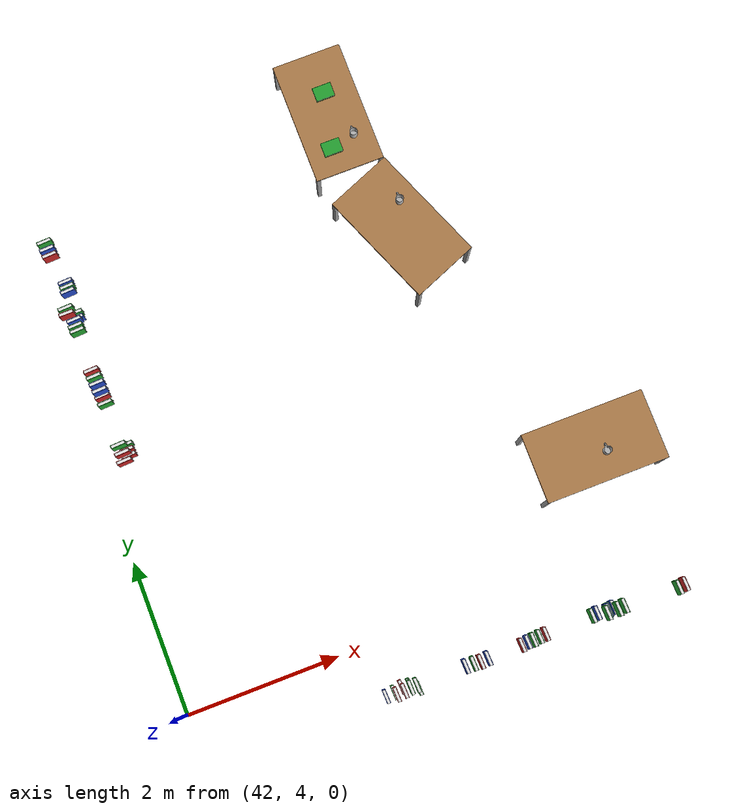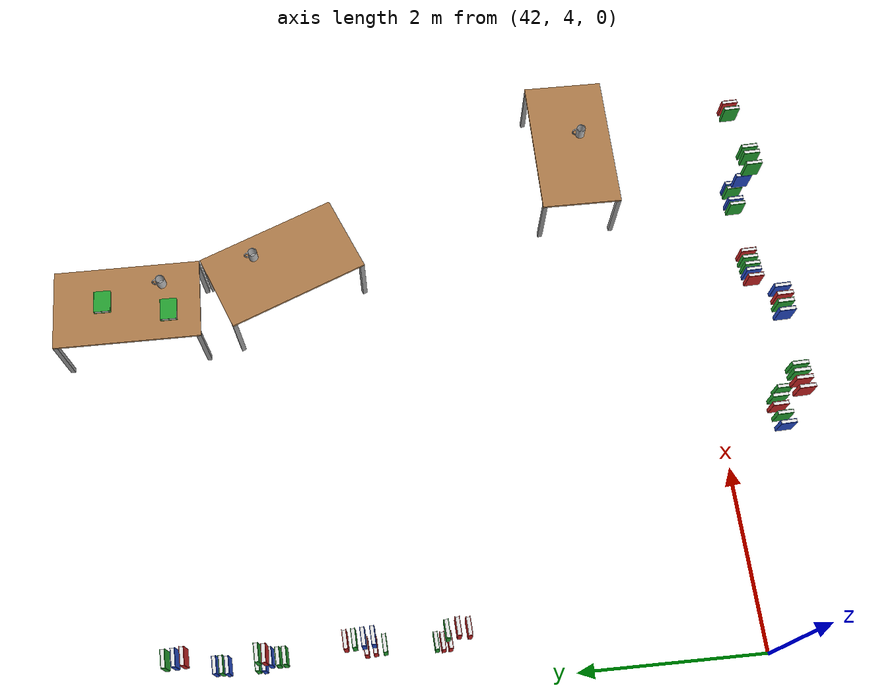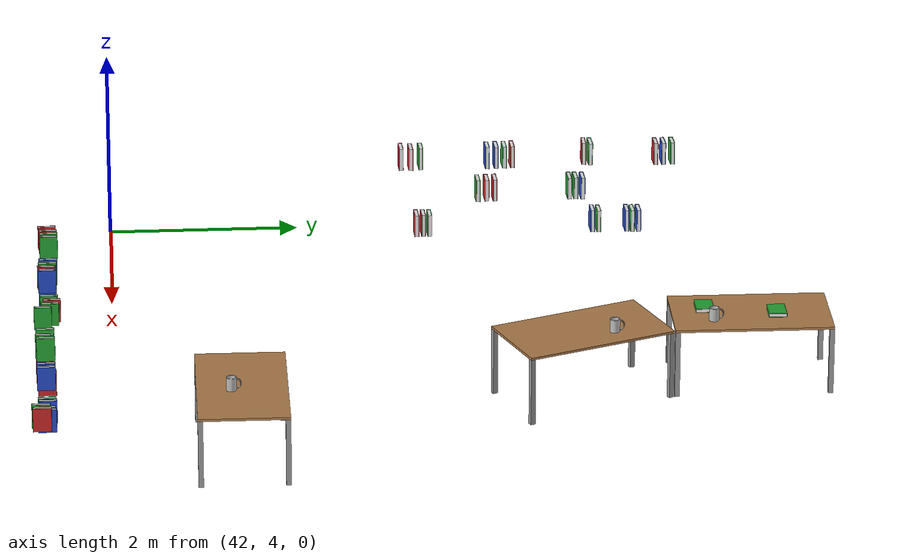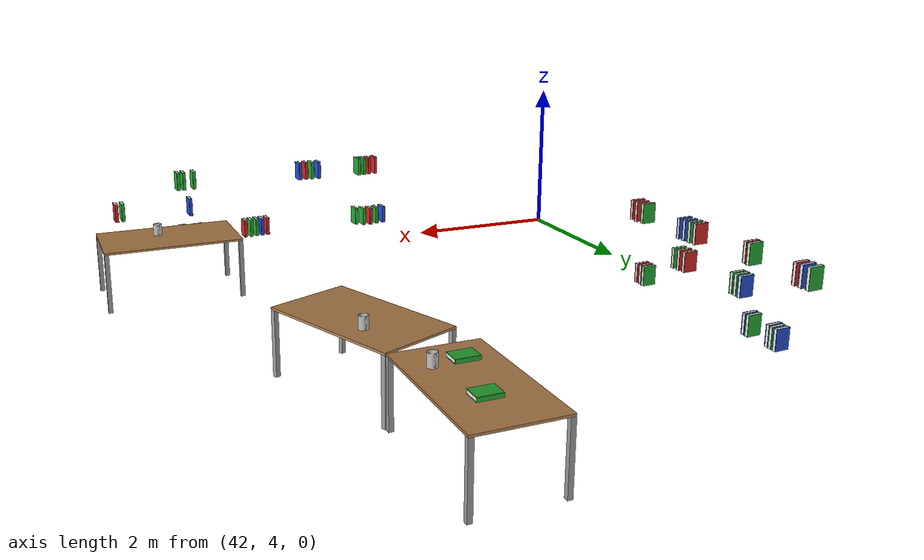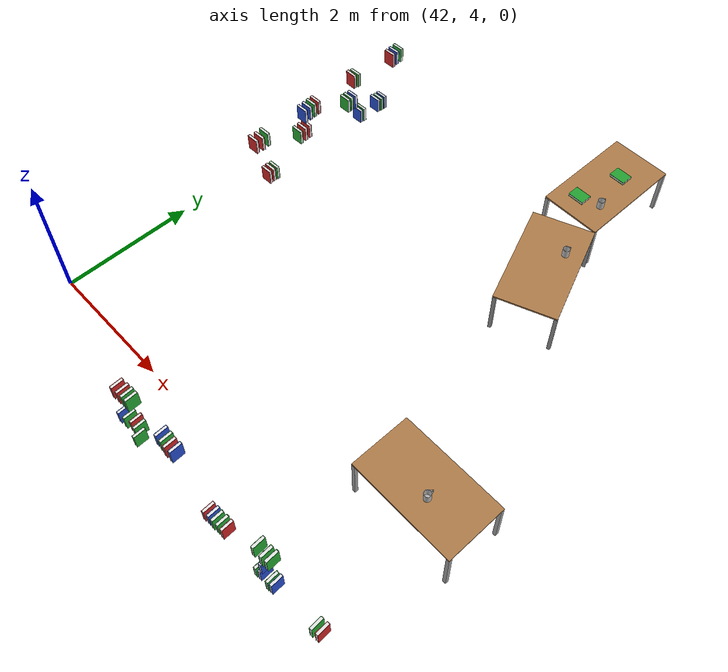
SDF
<sdf version="1.4">
 <world name="default">
  <include><uri>model://sun</uri></include>
  <model name="largeTable_r1403_atwindow">
   <pose>46.3 10.42 0 0 0 0</pose>
   <include><uri>model://largeTable</uri></include>
  </model>
  <model name="largeTable_r1403_diagonal">
   <pose>46.64 8.7 0 0 0 0.385778</pose>
   <include><uri>model://largeTable</uri></include>
  </model>
  <model name="largeTable_r1403_atwall">
   <pose>47.85 5.257 0 0 0 1.570796327</pose>
   <include><uri>model://largeTable</uri></include>
  </model>
  <model name="cup_19"><pose>46.50 10.07 0.78 0 0 0</pose><include><uri>model://cup</uri></include></model>
  <model name="cup_20"><pose>46.73 9.05 0.78 0 0 0</pose><include><uri>model://cup</uri></include></model>
  <model name="cup_21"><pose>47.96 5.19 0.78 0 0 0</pose><include><uri>model://cup</uri></include></model>
  <model name="greenBook_4">
   <pose>46.34 10.68 0.74 1.570796327 0 -1.570796327</pose>
   <include><uri>model://greenBook</uri></include>
  </model>
  <model name="greenBook_5">
   <pose>46.18 9.96 0.74 1.570796327 0 -1.570796327</pose>
   <include><uri>model://greenBook</uri></include>
  </model>
  <model name="redBook_7">
   <pose>48.2476 3.30816 0.582587 0 0 -1.53468</pose>
   <include><uri>model://redBook</uri></include>
  </model>
  <model name="greenBook_10">
   <pose>48.1617 3.29838 0.582587 0 0 -1.53468</pose>
   <include><uri>model://greenBook</uri></include>
  </model>
  <model name="blueBook_9">
   <pose>47.2512 3.34391 0.582587 0 0 -1.53468</pose>
   <include><uri>model://blueBook</uri></include>
  </model>
  <model name="blueBook_10">
   <pose>47.1746 3.35109 0.186407 0 0 -1.53468</pose>
   <include><uri>model://blueBook</uri></include>
  </model>
  <model name="greenBook_11">
   <pose>47.107 3.34176 0.186407 0 0 -1.53468</pose>
   <include><uri>model://greenBook</uri></include>
  </model>
  <model name="greenBook_12">
   <pose>47.324 3.33659 0.186407 0 0 -1.53468</pose>
   <include><uri>model://greenBook</uri></include>
  </model>
  <model name="blueBook_11">
   <pose>47.3842 3.34585 0.186407 0 0 -1.53468</pose>
   <include><uri>model://blueBook</uri></include>
  </model>
  <model name="redBook_8">
   <pose>46.4846 3.34086 0.186407 0 0 -1.53468</pose>
   <include><uri>model://redBook</uri></include>
  </model>
  <model name="greenBook_13">
   <pose>46.4012 3.33964 0.186407 0 0 -1.53468</pose>
   <include><uri>model://greenBook</uri></include>
  </model>
  <model name="greenBook_14">
   <pose>46.3167 3.33004 0.186407 0 0 -1.53468</pose>
   <include><uri>model://greenBook</uri></include>
  </model>
  <model name="blueBook_12">
   <pose>46.2406 3.32896 0.186407 0 0 -1.53468</pose>
   <include><uri>model://blueBook</uri></include>
  </model>
  <model name="greenBook_15">
   <pose>44.7863 3.28678 0.186407 0 0 -1.53468</pose>
   <include><uri>model://greenBook</uri></include>
  </model>
  <model name="greenBook_16">
   <pose>44.689 3.35967 0.186407 0 0 -1.53468</pose>
   <include><uri>model://greenBook</uri></include>
  </model>
  <model name="redBook_9">
   <pose>44.5896 3.37783 0.186407 0 0 -1.53468</pose>
   <include><uri>model://redBook</uri></include>
  </model>
  <model name="greenBook_17">
   <pose>44.4841 3.34874 0.186407 0 0 -1.53468</pose>
   <include><uri>model://greenBook</uri></include>
  </model>
  <model name="blueBook_13">
   <pose>44.3726 3.33787 0.186407 0 0 -1.53468</pose>
   <include><uri>model://blueBook</uri></include>
  </model>
  <model name="redBook_10">
   <pose>46.1594 3.32 0.186407 0 0 -1.53468</pose>
   <include><uri>model://redBook</uri></include>
  </model>
  <model name="greenBook_18">
   <pose>47.1818 3.33995 0.958151 0 0 -1.53468</pose>
   <include><uri>model://greenBook</uri></include>
  </model>
  <model name="greenBook_19">
   <pose>47.3215 3.33737 0.958151 0 0 -1.53468</pose>
   <include><uri>model://greenBook</uri></include>
  </model>
  <model name="greenBook_20">
   <pose>47.4001 3.34779 0.958151 0 0 -1.53468</pose>
   <include><uri>model://greenBook</uri></include>
  </model>
  <model name="blueBook_14">
   <pose>45.6584 3.35437 0.958151 0 0 -1.53468</pose>
   <include><uri>model://blueBook</uri></include>
  </model>
  <model name="redBook_11">
   <pose>45.564 3.34692 0.958151 0 0 -1.53468</pose>
   <include><uri>model://redBook</uri></include>
  </model>
  <model name="greenBook_21">
   <pose>45.4764 3.35777 0.958151 0 0 -1.53468</pose>
   <include><uri>model://greenBook</uri></include>
  </model>
  <model name="blueBook_15">
   <pose>45.3773 3.3623 0.958151 0 0 -1.53468</pose>
   <include><uri>model://blueBook</uri></include>
  </model>
  <model name="greenBook_22">
   <pose>44.7589 3.36577 0.958151 0 0 -1.53468</pose>
   <include><uri>model://greenBook</uri></include>
  </model>
  <model name="greenBook_23">
   <pose>44.6812 3.36465 0.958151 0 0 -1.53468</pose>
   <include><uri>model://greenBook</uri></include>
  </model>
  <model name="redBook_12">
   <pose>44.5983 3.35549 0.958151 0 0 -1.53468</pose>
   <include><uri>model://redBook</uri></include>
  </model>
  <model name="redBook_13">
   <pose>44.4985 3.34604 0.958151 0 0 -1.53468</pose>
   <include><uri>model://redBook</uri></include>
  </model>
  <model name="redBook_14">
   <pose>42.37 9.06 0.958151 0 0 0</pose>
   <include><uri>model://redBook</uri></include>
  </model>
  <model name="greenBook_24">
   <pose>42.4109 10.0044 0.958151 0 -0 0.045059</pose>
   <include><uri>model://greenBook</uri></include>
  </model>
  <model name="blueBook_16">
   <pose>42.4142 9.9093 0.958151 0 -0 0.045059</pose>
   <include><uri>model://blueBook</uri></include>
  </model>
  <model name="redBook_15">
   <pose>42.4186 9.8255 0.958151 0 -0 0.045059</pose>
   <include><uri>model://redBook</uri></include>
  </model>
  <model name="redBook_16">
   <pose>42.4187 8.28849 0.958151 0 -0 0.045059</pose>
   <include><uri>model://redBook</uri></include>
  </model>
  <model name="greenBook_25">
   <pose>42.4239 8.20397 0.958151 0 -0 0.045059</pose>
   <include><uri>model://greenBook</uri></include>
  </model>
  <model name="blueBook_17">
   <pose>42.4289 8.11599 0.958151 0 -0 0.045059</pose>
   <include><uri>model://blueBook</uri></include>
  </model>
  <model name="blueBook_18">
   <pose>42.4331 8.02142 0.958151 0 -0 0.045059</pose>
   <include><uri>model://blueBook</uri></include>
  </model>
  <model name="greenBook_26">
   <pose>42.4225 7.3117 0.958151 0 -0 0.045059</pose>
   <include><uri>model://greenBook</uri></include>
  </model>
  <model name="redBook_17">
   <pose>42.4353 7.2041 0.958151 0 -0 0.045059</pose>
   <include><uri>model://redBook</uri></include>
  </model>
  <model name="redBook_18">
   <pose>42.4249 7.10147 0.958151 0 -0 0.045059</pose>
   <include><uri>model://redBook</uri></include>
  </model>
  <model name="greenBook_27">
   <pose>42.3823 9.1288 0.958151 0 -0 0.045059</pose>
   <include><uri>model://greenBook</uri></include>
  </model>
  <model name="blueBook_19">
   <pose>42.3925 9.04987 0.571409 0 -0 0.045059</pose>
   <include><uri>model://blueBook</uri></include>
  </model>
  <model name="greenBook_28">
   <pose>42.3844 8.97391 0.571409 0 -0 0.045059</pose>
   <include><uri>model://greenBook</uri></include>
  </model>
  <model name="greenBook_29">
   <pose>42.384 8.90863 0.571409 0 -0 0.045059</pose>
   <include><uri>model://greenBook</uri></include>
  </model>
  <model name="redBook_19">
   <pose>42.3936 8.10754 0.571409 0 -0 0.045059</pose>
   <include><uri>model://redBook</uri></include>
  </model>
  <model name="redBook_20">
   <pose>42.3994 8.02036 0.571409 0 -0 0.045059</pose>
   <include><uri>model://redBook</uri></include>
  </model>
  <model name="greenBook_30">
   <pose>42.4036 7.92483 0.571409 0 -0 0.045059</pose>
   <include><uri>model://greenBook</uri></include>
  </model>
  <model name="greenBook_31">
   <pose>42.3995 9.2254 0.191656 0 -0 0.045059</pose>
   <include><uri>model://greenBook</uri></include>
  </model>
  <model name="blueBook_20">
   <pose>42.3925 9.15965 0.191656 0 -0 0.045059</pose>
   <include><uri>model://blueBook</uri></include>
  </model>
  <model name="blueBook_21">
   <pose>42.4135 9.65303 0.191656 0 -0 0.045059</pose>
   <include><uri>model://blueBook</uri></include>
  </model>
  <model name="greenBook_32">
   <pose>42.4126 9.58658 0.191656 0 -0 0.045059</pose>
   <include><uri>model://greenBook</uri></include>
  </model>
  <model name="blueBook_22">
   <pose>42.401 9.52726 0.191656 0 -0 0.045059</pose>
   <include><uri>model://blueBook</uri></include>
  </model>
  <model name="greenBook_33">
   <pose>42.43 7.4079 0.191656 0 -0 0.045059</pose>
   <include><uri>model://greenBook</uri></include>
  </model>
  <model name="redBook_21">
   <pose>42.4214 7.34113 0.191656 0 -0 0.045059</pose>
   <include><uri>model://redBook</uri></include>
  </model>
  <model name="redBook_22">
   <pose>42.4252 7.26811 0.191656 0 -0 0.045059</pose>
   <include><uri>model://redBook</uri></include>
  </model>
 </world>
</sdf>
